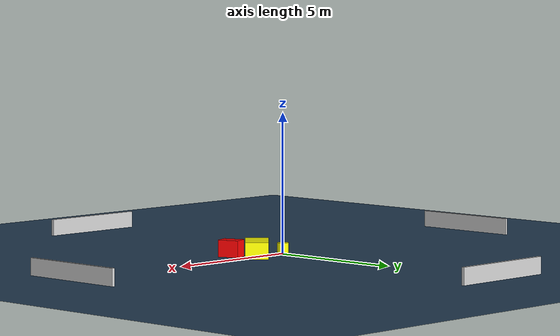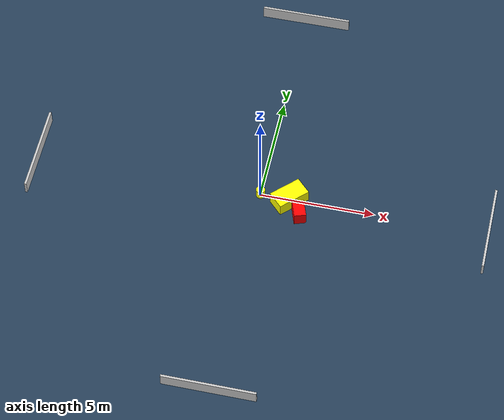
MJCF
<?xml version="1.0" ?>
<mujoco model="generated_environment">
  <option timestep="0.01" integrator="RK4" cone="elliptic"/>
  <default>
    <geom density="1"/>
  </default>
  <asset>
    <texture builtin="gradient" height="3072" name="skybox" rgb1="0.3 0.5 0.7" rgb2="0 0 0" type="skybox" width="512"/>
    <texture builtin="checker" height="300" name="groundplane" rgb1="0.2 0.3 0.4" rgb2="0.1 0.2 0.3" type="2d" width="300"/>
    <material name="groundplane" reflectance="0.2" texrepeat="5 5" texture="groundplane"/>
  </asset>
  <worldbody>
    <light dir="0 0 -1" directional="true" pos="0 0 1.5"/>
    <geom condim="3" friction="0.5 0.005 0.001" material="groundplane" name="floor" pos="0 0 0" size="0 0 0.05" type="plane"/>
    <body name="walls">
      <geom name="wall_1" condim="4" pos="-10.0 0.0 0.3" rgba="0.800000011920929 0.800000011920929 0.800000011920929 1.0" size="0.05 2.0 0.3" type="box"/>
      <geom name="wall_2" condim="4" pos="10.0 0.0 0.3" rgba="0.800000011920929 0.800000011920929 0.800000011920929 1.0" size="0.05 2.0 0.3" type="box"/>
      <geom name="wall_3" condim="4" pos="0.0 -10.0 0.3" rgba="0.800000011920929 0.800000011920929 0.800000011920929 1.0" size="2.0 0.05 0.3" type="box"/>
      <geom name="wall_4" condim="4" pos="0.0 10.0 0.3" rgba="0.800000011920929 0.800000011920929 0.800000011920929 1.0" size="2.0 0.05 0.3" type="box"/>
    </body>
    <body name="robot">
      <joint name="joint_x" type="slide" pos="0 0 0" axis="1 0 0"/>
      <joint name="joint_y" type="slide" pos="0 0 0" axis="0 1 0"/>
      <geom name="robot" type="cylinder" pos="0.0 0.0 0.2" size="0.2 0.2 0.0" mass="5.0" friction="1.0 0.005 0.0001" condim="4" rgba="1.0 1.0 0.0 1.0"/>
    </body>
    <body name="obstacle_1_movable">
      <geom name="obstacle_1_movable" condim="4" pos="1.2786486815415554 -0.03858040785577237 0.3" euler="0 0 314.4216048134141" friction="0.0 0.005 0.001" rgba="1.0 1.0 0.0 1.0" size="0.41343790019619464 0.7298824682142446 0.3" type="box" mass="0.1"/>
      <joint type="free"/>
    </body>
    <body name="obstacle_2_static">
      <geom name="obstacle_2_static" condim="4" pos="1.8472415350063114 -0.7459673896030972 0.3" euler="0 0 18.932199005974347" friction="0.0 0.005 0.001" rgba="1.0 0.0 0.0 1.0" size="0.25923219760425387 0.38270968969887353 0.3" type="box"/>
    </body>
  </worldbody>
  <actuator>
    <motor name="actuator_x" joint="joint_x" gear="1" ctrlrange="-1 1"/>
    <motor name="actuator_y" joint="joint_y" gear="1" ctrlrange="-1 1"/>
  </actuator>
</mujoco>
